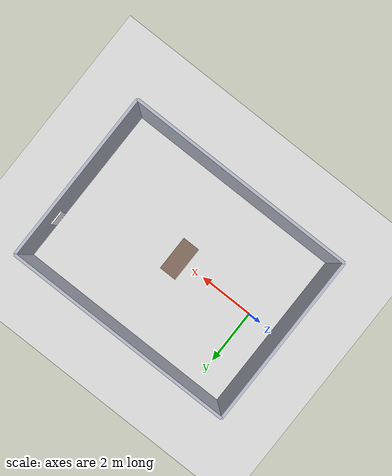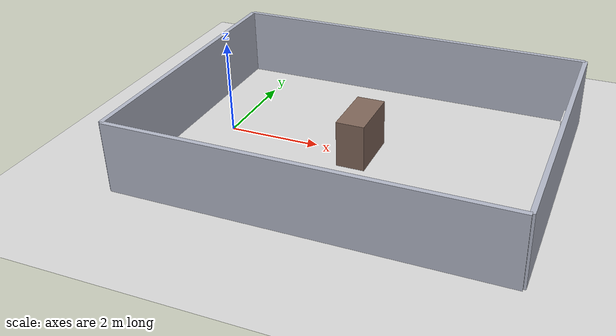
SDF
<sdf version="1.9">
 <world name="qr_room">
  <physics name="step" type="ignored">
   <max_step_size>0.004</max_step_size>
   <real_time_factor>1.0</real_time_factor>
  </physics>
  <plugin filename="gz-sim-physics-system" name="gz::sim::systems::Physics"/>
  <plugin filename="gz-sim-user-commands-system" name="gz::sim::systems::UserCommands"/>
  <plugin filename="gz-sim-scene-broadcaster-system" name="gz::sim::systems::SceneBroadcaster"/>
  <plugin filename="gz-sim-sensors-system" name="gz::sim::systems::Sensors">
   <render_engine>ogre2</render_engine>
  </plugin>
  <light type="directional" name="sun">
   <pose>0 0 10 0 0 0</pose>
   <diffuse>0.9 0.9 0.9 1</diffuse>
   <specular>0.2 0.2 0.2 1</specular>
   <direction>-0.3 0.2 -0.9</direction>
  </light>
  <model name="ground">
   <static>true</static>
   <link name="link">
    <collision name="c"><geometry><plane><normal>0 0 1</normal><size>40 40</size></plane></geometry></collision>
    <visual name="v">
     <geometry><plane><normal>0 0 1</normal><size>40 40</size></plane></geometry>
     <material><ambient>0.8 0.8 0.8 1</ambient><diffuse>0.85 0.85 0.85 1</diffuse></material>
    </visual>
   </link>
  </model>
  <model name="room">
   <static>true</static>
   <link name="link">
    <collision name="cn">
     <pose>3 3 0.75 0 0 0</pose>
     <geometry><box><size>8 0.1 1.5</size></box></geometry>
    </collision>
    <visual name="vn">
     <pose>3 3 0.75 0 0 0</pose>
     <geometry><box><size>8 0.1 1.5</size></box></geometry>
     <material><diffuse>0.7 0.72 0.78 1</diffuse></material>
    </visual>
    <collision name="cs">
     <pose>3 -3 0.75 0 0 0</pose>
     <geometry><box><size>8 0.1 1.5</size></box></geometry>
    </collision>
    <visual name="vs">
     <pose>3 -3 0.75 0 0 0</pose>
     <geometry><box><size>8 0.1 1.5</size></box></geometry>
     <material><diffuse>0.7 0.72 0.78 1</diffuse></material>
    </visual>
    <collision name="ce">
     <pose>7 0 0.75 0 0 0</pose>
     <geometry><box><size>0.1 6 1.5</size></box></geometry>
    </collision>
    <visual name="ve">
     <pose>7 0 0.75 0 0 0</pose>
     <geometry><box><size>0.1 6 1.5</size></box></geometry>
     <material><diffuse>0.7 0.72 0.78 1</diffuse></material>
    </visual>
    <collision name="cw">
     <pose>-1 0 0.75 0 0 0</pose>
     <geometry><box><size>0.1 6 1.5</size></box></geometry>
    </collision>
    <visual name="vw">
     <pose>-1 0 0.75 0 0 0</pose>
     <geometry><box><size>0.1 6 1.5</size></box></geometry>
     <material><diffuse>0.7 0.72 0.78 1</diffuse></material>
    </visual>
    <collision name="co">
     <pose>3 0 0.5 0 0 0</pose>
     <geometry><box><size>0.6 1.2 1.0</size></box></geometry>
    </collision>
    <visual name="vo">
     <pose>3 0 0.5 0 0 0</pose>
     <geometry><box><size>0.6 1.2 1.0</size></box></geometry>
     <material><diffuse>0.5 0.4 0.35 1</diffuse></material>
    </visual>
   </link>
  </model>
  <model name="qr_panel">
   <static>true</static>
   <pose>6.85 1.4 0.7 0 0 0</pose>
   <link name="link">
    <visual name="v">
     <geometry><box><size>0.04 0.5 0.5</size></box></geometry>
     <material>
      <ambient>1 1 1 1</ambient>
      <diffuse>1 1 1 1</diffuse>
      <pbr>
       <metal><albedo_map>file:///home/boosterk1/k1_qr_nav_ws/src/k1_qr_nav/worlds/qr_tex.png</albedo_map></metal>
      </pbr>
     </material>
    </visual>
    <collision name="c"><geometry><box><size>0.04 0.5 0.5</size></box></geometry></collision>
   </link>
  </model>
 </world>
</sdf>
